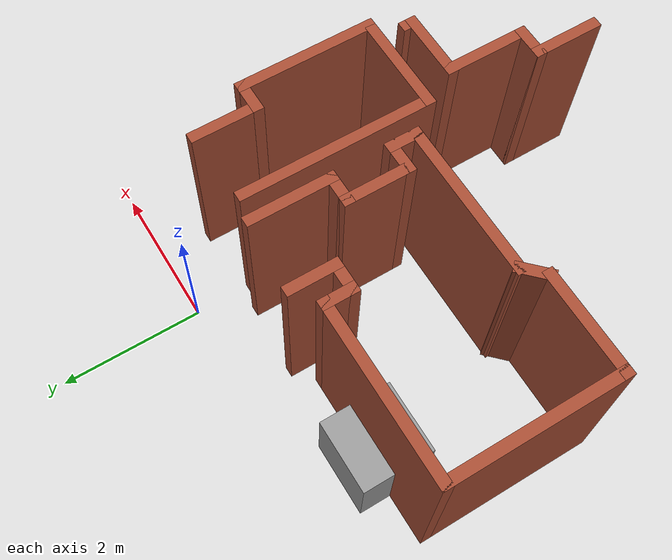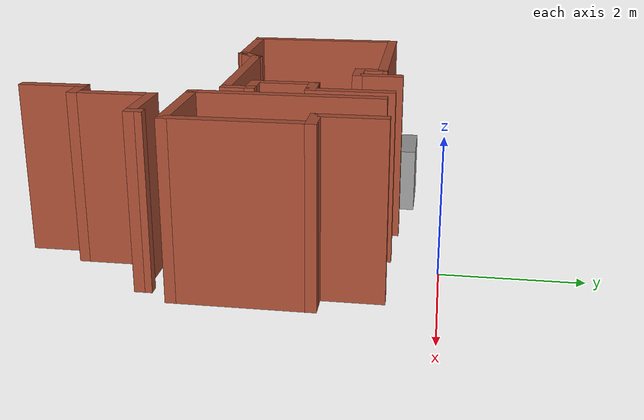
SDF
<sdf version="1.6">
 <model name="map_77">
  <link name="Wall_24">
   <pose>-1.37673 -0.999591 0 0 0 -1.5708</pose>
   <visual name="Wall_24_Visual">
    <pose>0 0 1.25 0 -0 0</pose>
    <geometry><box><size>0.75 0.15 2.5</size></box></geometry>
    <material>
     <script><uri>file://media/materials/scripts/gazebo.material</uri><name>Gazebo/Bricks</name></script>
     <ambient>1 1 1 1</ambient>
     <shader type="pixel"/>
    </material>
    <meta><layer>0</layer></meta>
   </visual>
   <collision name="Wall_24_Collision">
    <pose>0 0 1.25 0 -0 0</pose>
    <geometry><box><size>0.75 0.15 2.5</size></box></geometry>
    <surface>
     <friction>
      <ode><mu>1</mu><mu2>1</mu2><fdir1>0 0 0</fdir1><slip1>0</slip1><slip2>0</slip2></ode>
      <torsional>
       <coefficient>1</coefficient>
       <patch_radius>0</patch_radius>
       <surface_radius>0</surface_radius>
       <use_patch_radius>1</use_patch_radius>
       <ode><slip>0</slip></ode>
      </torsional>
     </friction>
     <bounce><restitution_coefficient>0</restitution_coefficient><threshold>1e+06</threshold></bounce>
     <contact>
      <collide_without_contact>0</collide_without_contact>
      <collide_without_contact_bitmask>1</collide_without_contact_bitmask>
      <collide_bitmask>1</collide_bitmask>
      <ode>
       <soft_cfm>0</soft_cfm>
       <soft_erp>0.2</soft_erp>
       <kp>1e+13</kp>
       <kd>1</kd>
       <max_vel>0.01</max_vel>
       <min_depth>0</min_depth>
      </ode>
      <bullet>
       <split_impulse>1</split_impulse>
       <split_impulse_penetration_threshold>-0.01</split_impulse_penetration_threshold>
       <soft_cfm>0</soft_cfm>
       <soft_erp>0.2</soft_erp>
       <kp>1e+13</kp>
       <kd>1</kd>
      </bullet>
     </contact>
    </surface>
   </collision>
  </link>
  <link name="Wall_25">
   <pose>-1.55173 -1.29959 0 0 -0 3.14159</pose>
   <visual name="Wall_25_Visual">
    <pose>0 0 1.25 0 -0 0</pose>
    <geometry><box><size>0.5 0.15 2.5</size></box></geometry>
    <material>
     <script><uri>file://media/materials/scripts/gazebo.material</uri><name>Gazebo/Bricks</name></script>
     <ambient>1 1 1 1</ambient>
     <shader type="pixel"/>
    </material>
    <meta><layer>0</layer></meta>
   </visual>
   <collision name="Wall_25_Collision">
    <pose>0 0 1.25 0 -0 0</pose>
    <geometry><box><size>0.5 0.15 2.5</size></box></geometry>
    <surface>
     <friction>
      <ode><mu>1</mu><mu2>1</mu2><fdir1>0 0 0</fdir1><slip1>0</slip1><slip2>0</slip2></ode>
      <torsional>
       <coefficient>1</coefficient>
       <patch_radius>0</patch_radius>
       <surface_radius>0</surface_radius>
       <use_patch_radius>1</use_patch_radius>
       <ode><slip>0</slip></ode>
      </torsional>
     </friction>
     <bounce><restitution_coefficient>0</restitution_coefficient><threshold>1e+06</threshold></bounce>
     <contact>
      <collide_without_contact>0</collide_without_contact>
      <collide_without_contact_bitmask>1</collide_without_contact_bitmask>
      <collide_bitmask>1</collide_bitmask>
      <ode>
       <soft_cfm>0</soft_cfm>
       <soft_erp>0.2</soft_erp>
       <kp>1e+13</kp>
       <kd>1</kd>
       <max_vel>0.01</max_vel>
       <min_depth>0</min_depth>
      </ode>
      <bullet>
       <split_impulse>1</split_impulse>
       <split_impulse_penetration_threshold>-0.01</split_impulse_penetration_threshold>
       <soft_cfm>0</soft_cfm>
       <soft_erp>0.2</soft_erp>
       <kp>1e+13</kp>
       <kd>1</kd>
      </bullet>
     </contact>
    </surface>
   </collision>
  </link>
  <link name="Wall_26">
   <pose>-1.72673 -1.12459 0 0 -0 1.5708</pose>
   <visual name="Wall_26_Visual">
    <pose>0 0 1.25 0 -0 0</pose>
    <geometry><box><size>0.5 0.15 2.5</size></box></geometry>
    <material>
     <script><uri>file://media/materials/scripts/gazebo.material</uri><name>Gazebo/Bricks</name></script>
     <ambient>1 1 1 1</ambient>
     <shader type="pixel"/>
    </material>
    <meta><layer>0</layer></meta>
   </visual>
   <collision name="Wall_26_Collision">
    <pose>0 0 1.25 0 -0 0</pose>
    <geometry><box><size>0.5 0.15 2.5</size></box></geometry>
    <surface>
     <friction>
      <ode><mu>1</mu><mu2>1</mu2><fdir1>0 0 0</fdir1><slip1>0</slip1><slip2>0</slip2></ode>
      <torsional>
       <coefficient>1</coefficient>
       <patch_radius>0</patch_radius>
       <surface_radius>0</surface_radius>
       <use_patch_radius>1</use_patch_radius>
       <ode><slip>0</slip></ode>
      </torsional>
     </friction>
     <bounce><restitution_coefficient>0</restitution_coefficient><threshold>1e+06</threshold></bounce>
     <contact>
      <collide_without_contact>0</collide_without_contact>
      <collide_without_contact_bitmask>1</collide_without_contact_bitmask>
      <collide_bitmask>1</collide_bitmask>
      <ode>
       <soft_cfm>0</soft_cfm>
       <soft_erp>0.2</soft_erp>
       <kp>1e+13</kp>
       <kd>1</kd>
       <max_vel>0.01</max_vel>
       <min_depth>0</min_depth>
      </ode>
      <bullet>
       <split_impulse>1</split_impulse>
       <split_impulse_penetration_threshold>-0.01</split_impulse_penetration_threshold>
       <soft_cfm>0</soft_cfm>
       <soft_erp>0.2</soft_erp>
       <kp>1e+13</kp>
       <kd>1</kd>
      </bullet>
     </contact>
    </surface>
   </collision>
  </link>
  <link name="Wall_27">
   <pose>-2.90173 -0.949591 0 0 -0 3.14159</pose>
   <visual name="Wall_27_Visual">
    <pose>0 0 1.25 0 -0 0</pose>
    <geometry><box><size>2.5 0.15 2.5</size></box></geometry>
    <material>
     <script><uri>file://media/materials/scripts/gazebo.material</uri><name>Gazebo/Bricks</name></script>
     <ambient>1 1 1 1</ambient>
     <shader type="pixel"/>
    </material>
    <meta><layer>0</layer></meta>
   </visual>
   <collision name="Wall_27_Collision">
    <pose>0 0 1.25 0 -0 0</pose>
    <geometry><box><size>2.5 0.15 2.5</size></box></geometry>
    <surface>
     <friction>
      <ode><mu>1</mu><mu2>1</mu2><fdir1>0 0 0</fdir1><slip1>0</slip1><slip2>0</slip2></ode>
      <torsional>
       <coefficient>1</coefficient>
       <patch_radius>0</patch_radius>
       <surface_radius>0</surface_radius>
       <use_patch_radius>1</use_patch_radius>
       <ode><slip>0</slip></ode>
      </torsional>
     </friction>
     <bounce><restitution_coefficient>0</restitution_coefficient><threshold>1e+06</threshold></bounce>
     <contact>
      <collide_without_contact>0</collide_without_contact>
      <collide_without_contact_bitmask>1</collide_without_contact_bitmask>
      <collide_bitmask>1</collide_bitmask>
      <ode>
       <soft_cfm>0</soft_cfm>
       <soft_erp>0.2</soft_erp>
       <kp>1e+13</kp>
       <kd>1</kd>
       <max_vel>0.01</max_vel>
       <min_depth>0</min_depth>
      </ode>
      <bullet>
       <split_impulse>1</split_impulse>
       <split_impulse_penetration_threshold>-0.01</split_impulse_penetration_threshold>
       <soft_cfm>0</soft_cfm>
       <soft_erp>0.2</soft_erp>
       <kp>1e+13</kp>
       <kd>1</kd>
      </bullet>
     </contact>
    </surface>
   </collision>
  </link>
  <link name="Wall_28">
   <pose>-4.07673 -2.12459 0 0 0 -1.5708</pose>
   <visual name="Wall_28_Visual">
    <pose>0 0 1.25 0 -0 0</pose>
    <geometry><box><size>2.5 0.15 2.5</size></box></geometry>
    <material>
     <script><uri>file://media/materials/scripts/gazebo.material</uri><name>Gazebo/Bricks</name></script>
     <ambient>1 1 1 1</ambient>
     <shader type="pixel"/>
    </material>
    <meta><layer>0</layer></meta>
   </visual>
   <collision name="Wall_28_Collision">
    <pose>0 0 1.25 0 -0 0</pose>
    <geometry><box><size>2.5 0.15 2.5</size></box></geometry>
    <surface>
     <friction>
      <ode><mu>1</mu><mu2>1</mu2><fdir1>0 0 0</fdir1><slip1>0</slip1><slip2>0</slip2></ode>
      <torsional>
       <coefficient>1</coefficient>
       <patch_radius>0</patch_radius>
       <surface_radius>0</surface_radius>
       <use_patch_radius>1</use_patch_radius>
       <ode><slip>0</slip></ode>
      </torsional>
     </friction>
     <bounce><restitution_coefficient>0</restitution_coefficient><threshold>1e+06</threshold></bounce>
     <contact>
      <collide_without_contact>0</collide_without_contact>
      <collide_without_contact_bitmask>1</collide_without_contact_bitmask>
      <collide_bitmask>1</collide_bitmask>
      <ode>
       <soft_cfm>0</soft_cfm>
       <soft_erp>0.2</soft_erp>
       <kp>1e+13</kp>
       <kd>1</kd>
       <max_vel>0.01</max_vel>
       <min_depth>0</min_depth>
      </ode>
      <bullet>
       <split_impulse>1</split_impulse>
       <split_impulse_penetration_threshold>-0.01</split_impulse_penetration_threshold>
       <soft_cfm>0</soft_cfm>
       <soft_erp>0.2</soft_erp>
       <kp>1e+13</kp>
       <kd>1</kd>
      </bullet>
     </contact>
    </surface>
   </collision>
  </link>
  <link name="Wall_29">
   <pose>-3.40173 -3.29959 0 0 -0 0</pose>
   <visual name="Wall_29_Visual">
    <pose>0 0 1.25 0 -0 0</pose>
    <geometry><box><size>1.5 0.15 2.5</size></box></geometry>
    <material>
     <script><uri>file://media/materials/scripts/gazebo.material</uri><name>Gazebo/Bricks</name></script>
     <ambient>1 1 1 1</ambient>
     <shader type="pixel"/>
    </material>
    <meta><layer>0</layer></meta>
   </visual>
   <collision name="Wall_29_Collision">
    <pose>0 0 1.25 0 -0 0</pose>
    <geometry><box><size>1.5 0.15 2.5</size></box></geometry>
    <surface>
     <friction>
      <ode><mu>1</mu><mu2>1</mu2><fdir1>0 0 0</fdir1><slip1>0</slip1><slip2>0</slip2></ode>
      <torsional>
       <coefficient>1</coefficient>
       <patch_radius>0</patch_radius>
       <surface_radius>0</surface_radius>
       <use_patch_radius>1</use_patch_radius>
       <ode><slip>0</slip></ode>
      </torsional>
     </friction>
     <bounce><restitution_coefficient>0</restitution_coefficient><threshold>1e+06</threshold></bounce>
     <contact>
      <collide_without_contact>0</collide_without_contact>
      <collide_without_contact_bitmask>1</collide_without_contact_bitmask>
      <collide_bitmask>1</collide_bitmask>
      <ode>
       <soft_cfm>0</soft_cfm>
       <soft_erp>0.2</soft_erp>
       <kp>1e+13</kp>
       <kd>1</kd>
       <max_vel>0.01</max_vel>
       <min_depth>0</min_depth>
      </ode>
      <bullet>
       <split_impulse>1</split_impulse>
       <split_impulse_penetration_threshold>-0.01</split_impulse_penetration_threshold>
       <soft_cfm>0</soft_cfm>
       <soft_erp>0.2</soft_erp>
       <kp>1e+13</kp>
       <kd>1</kd>
      </bullet>
     </contact>
    </surface>
   </collision>
  </link>
  <link name="Wall_30">
   <pose>-2.60298 -3.17585 0 0 -0 0.785398</pose>
   <visual name="Wall_30_Visual">
    <pose>0 0 1.25 0 -0 0</pose>
    <geometry><box><size>0.5 0.15 2.5</size></box></geometry>
    <material>
     <script><uri>file://media/materials/scripts/gazebo.material</uri><name>Gazebo/Bricks</name></script>
     <ambient>1 1 1 1</ambient>
     <shader type="pixel"/>
    </material>
    <meta><layer>0</layer></meta>
   </visual>
   <collision name="Wall_30_Collision">
    <pose>0 0 1.25 0 -0 0</pose>
    <geometry><box><size>0.5 0.15 2.5</size></box></geometry>
    <surface>
     <friction>
      <ode><mu>1</mu><mu2>1</mu2><fdir1>0 0 0</fdir1><slip1>0</slip1><slip2>0</slip2></ode>
      <torsional>
       <coefficient>1</coefficient>
       <patch_radius>0</patch_radius>
       <surface_radius>0</surface_radius>
       <use_patch_radius>1</use_patch_radius>
       <ode><slip>0</slip></ode>
      </torsional>
     </friction>
     <bounce><restitution_coefficient>0</restitution_coefficient><threshold>1e+06</threshold></bounce>
     <contact>
      <collide_without_contact>0</collide_without_contact>
      <collide_without_contact_bitmask>1</collide_without_contact_bitmask>
      <collide_bitmask>1</collide_bitmask>
      <ode>
       <soft_cfm>0</soft_cfm>
       <soft_erp>0.2</soft_erp>
       <kp>1e+13</kp>
       <kd>1</kd>
       <max_vel>0.01</max_vel>
       <min_depth>0</min_depth>
      </ode>
      <bullet>
       <split_impulse>1</split_impulse>
       <split_impulse_penetration_threshold>-0.01</split_impulse_penetration_threshold>
       <soft_cfm>0</soft_cfm>
       <soft_erp>0.2</soft_erp>
       <kp>1e+13</kp>
       <kd>1</kd>
      </bullet>
     </contact>
    </surface>
   </collision>
  </link>
  <link name="Wall_31">
   <pose>-1.42924 -3.0521 0 0 -0 0</pose>
   <visual name="Wall_31_Visual">
    <pose>0 0 1.25 0 -0 0</pose>
    <geometry><box><size>2.25 0.15 2.5</size></box></geometry>
    <material>
     <script><uri>file://media/materials/scripts/gazebo.material</uri><name>Gazebo/Bricks</name></script>
     <ambient>1 1 1 1</ambient>
     <shader type="pixel"/>
    </material>
    <meta><layer>0</layer></meta>
   </visual>
   <collision name="Wall_31_Collision">
    <pose>0 0 1.25 0 -0 0</pose>
    <geometry><box><size>2.25 0.15 2.5</size></box></geometry>
    <surface>
     <friction>
      <ode><mu>1</mu><mu2>1</mu2><fdir1>0 0 0</fdir1><slip1>0</slip1><slip2>0</slip2></ode>
      <torsional>
       <coefficient>1</coefficient>
       <patch_radius>0</patch_radius>
       <surface_radius>0</surface_radius>
       <use_patch_radius>1</use_patch_radius>
       <ode><slip>0</slip></ode>
      </torsional>
     </friction>
     <bounce><restitution_coefficient>0</restitution_coefficient><threshold>1e+06</threshold></bounce>
     <contact>
      <collide_without_contact>0</collide_without_contact>
      <collide_without_contact_bitmask>1</collide_without_contact_bitmask>
      <collide_bitmask>1</collide_bitmask>
      <ode>
       <soft_cfm>0</soft_cfm>
       <soft_erp>0.2</soft_erp>
       <kp>1e+13</kp>
       <kd>1</kd>
       <max_vel>0.01</max_vel>
       <min_depth>0</min_depth>
      </ode>
      <bullet>
       <split_impulse>1</split_impulse>
       <split_impulse_penetration_threshold>-0.01</split_impulse_penetration_threshold>
       <soft_cfm>0</soft_cfm>
       <soft_erp>0.2</soft_erp>
       <kp>1e+13</kp>
       <kd>1</kd>
      </bullet>
     </contact>
    </surface>
   </collision>
  </link>
  <link name="Wall_32">
   <pose>-0.37924 -2.8771 0 0 -0 1.5708</pose>
   <visual name="Wall_32_Visual">
    <pose>0 0 1.25 0 -0 0</pose>
    <geometry><box><size>0.5 0.15 2.5</size></box></geometry>
    <material>
     <script><uri>file://media/materials/scripts/gazebo.material</uri><name>Gazebo/Bricks</name></script>
     <ambient>1 1 1 1</ambient>
     <shader type="pixel"/>
    </material>
    <meta><layer>0</layer></meta>
   </visual>
   <collision name="Wall_32_Collision">
    <pose>0 0 1.25 0 -0 0</pose>
    <geometry><box><size>0.5 0.15 2.5</size></box></geometry>
    <surface>
     <friction>
      <ode><mu>1</mu><mu2>1</mu2><fdir1>0 0 0</fdir1><slip1>0</slip1><slip2>0</slip2></ode>
      <torsional>
       <coefficient>1</coefficient>
       <patch_radius>0</patch_radius>
       <surface_radius>0</surface_radius>
       <use_patch_radius>1</use_patch_radius>
       <ode><slip>0</slip></ode>
      </torsional>
     </friction>
     <bounce><restitution_coefficient>0</restitution_coefficient><threshold>1e+06</threshold></bounce>
     <contact>
      <collide_without_contact>0</collide_without_contact>
      <collide_without_contact_bitmask>1</collide_without_contact_bitmask>
      <collide_bitmask>1</collide_bitmask>
      <ode>
       <soft_cfm>0</soft_cfm>
       <soft_erp>0.2</soft_erp>
       <kp>1e+13</kp>
       <kd>1</kd>
       <max_vel>0.01</max_vel>
       <min_depth>0</min_depth>
      </ode>
      <bullet>
       <split_impulse>1</split_impulse>
       <split_impulse_penetration_threshold>-0.01</split_impulse_penetration_threshold>
       <soft_cfm>0</soft_cfm>
       <soft_erp>0.2</soft_erp>
       <kp>1e+13</kp>
       <kd>1</kd>
      </bullet>
     </contact>
    </surface>
   </collision>
  </link>
  <link name="Wall_33">
   <pose>-0.55424 -2.7021 0 0 -0 3.14159</pose>
   <visual name="Wall_33_Visual">
    <pose>0 0 1.25 0 -0 0</pose>
    <geometry><box><size>0.5 0.15 2.5</size></box></geometry>
    <material>
     <script><uri>file://media/materials/scripts/gazebo.material</uri><name>Gazebo/Bricks</name></script>
     <ambient>1 1 1 1</ambient>
     <shader type="pixel"/>
    </material>
    <meta><layer>0</layer></meta>
   </visual>
   <collision name="Wall_33_Collision">
    <pose>0 0 1.25 0 -0 0</pose>
    <geometry><box><size>0.5 0.15 2.5</size></box></geometry>
    <surface>
     <friction>
      <ode><mu>1</mu><mu2>1</mu2><fdir1>0 0 0</fdir1><slip1>0</slip1><slip2>0</slip2></ode>
      <torsional>
       <coefficient>1</coefficient>
       <patch_radius>0</patch_radius>
       <surface_radius>0</surface_radius>
       <use_patch_radius>1</use_patch_radius>
       <ode><slip>0</slip></ode>
      </torsional>
     </friction>
     <bounce><restitution_coefficient>0</restitution_coefficient><threshold>1e+06</threshold></bounce>
     <contact>
      <collide_without_contact>0</collide_without_contact>
      <collide_without_contact_bitmask>1</collide_without_contact_bitmask>
      <collide_bitmask>1</collide_bitmask>
      <ode>
       <soft_cfm>0</soft_cfm>
       <soft_erp>0.2</soft_erp>
       <kp>1e+13</kp>
       <kd>1</kd>
       <max_vel>0.01</max_vel>
       <min_depth>0</min_depth>
      </ode>
      <bullet>
       <split_impulse>1</split_impulse>
       <split_impulse_penetration_threshold>-0.01</split_impulse_penetration_threshold>
       <soft_cfm>0</soft_cfm>
       <soft_erp>0.2</soft_erp>
       <kp>1e+13</kp>
       <kd>1</kd>
      </bullet>
     </contact>
    </surface>
   </collision>
  </link>
  <link name="Wall_34">
   <pose>-0.72924 -2.2771 0 0 -0 1.5708</pose>
   <visual name="Wall_34_Visual">
    <pose>0 0 1.25 0 -0 0</pose>
    <geometry><box><size>1 0.15 2.5</size></box></geometry>
    <material>
     <script><uri>file://media/materials/scripts/gazebo.material</uri><name>Gazebo/Bricks</name></script>
     <ambient>1 1 1 1</ambient>
     <shader type="pixel"/>
    </material>
    <meta><layer>0</layer></meta>
   </visual>
   <collision name="Wall_34_Collision">
    <pose>0 0 1.25 0 -0 0</pose>
    <geometry><box><size>1 0.15 2.5</size></box></geometry>
    <surface>
     <friction>
      <ode><mu>1</mu><mu2>1</mu2><fdir1>0 0 0</fdir1><slip1>0</slip1><slip2>0</slip2></ode>
      <torsional>
       <coefficient>1</coefficient>
       <patch_radius>0</patch_radius>
       <surface_radius>0</surface_radius>
       <use_patch_radius>1</use_patch_radius>
       <ode><slip>0</slip></ode>
      </torsional>
     </friction>
     <bounce><restitution_coefficient>0</restitution_coefficient><threshold>1e+06</threshold></bounce>
     <contact>
      <collide_without_contact>0</collide_without_contact>
      <collide_without_contact_bitmask>1</collide_without_contact_bitmask>
      <collide_bitmask>1</collide_bitmask>
      <ode>
       <soft_cfm>0</soft_cfm>
       <soft_erp>0.2</soft_erp>
       <kp>1e+13</kp>
       <kd>1</kd>
       <max_vel>0.01</max_vel>
       <min_depth>0</min_depth>
      </ode>
      <bullet>
       <split_impulse>1</split_impulse>
       <split_impulse_penetration_threshold>-0.01</split_impulse_penetration_threshold>
       <soft_cfm>0</soft_cfm>
       <soft_erp>0.2</soft_erp>
       <kp>1e+13</kp>
       <kd>1</kd>
      </bullet>
     </contact>
    </surface>
   </collision>
  </link>
  <link name="Wall_37">
   <pose>-0.55424 -1.8521 0 0 -0 0</pose>
   <visual name="Wall_37_Visual">
    <pose>0 0 1.25 0 -0 0</pose>
    <geometry><box><size>0.5 0.15 2.5</size></box></geometry>
    <material>
     <script><uri>file://media/materials/scripts/gazebo.material</uri><name>Gazebo/Bricks</name></script>
     <ambient>1 1 1 1</ambient>
     <shader type="pixel"/>
    </material>
    <meta><layer>0</layer></meta>
   </visual>
   <collision name="Wall_37_Collision">
    <pose>0 0 1.25 0 -0 0</pose>
    <geometry><box><size>0.5 0.15 2.5</size></box></geometry>
    <surface>
     <friction>
      <ode><mu>1</mu><mu2>1</mu2><fdir1>0 0 0</fdir1><slip1>0</slip1><slip2>0</slip2></ode>
      <torsional>
       <coefficient>1</coefficient>
       <patch_radius>0</patch_radius>
       <surface_radius>0</surface_radius>
       <use_patch_radius>1</use_patch_radius>
       <ode><slip>0</slip></ode>
      </torsional>
     </friction>
     <bounce><restitution_coefficient>0</restitution_coefficient><threshold>1e+06</threshold></bounce>
     <contact>
      <collide_without_contact>0</collide_without_contact>
      <collide_without_contact_bitmask>1</collide_without_contact_bitmask>
      <collide_bitmask>1</collide_bitmask>
      <ode>
       <soft_cfm>0</soft_cfm>
       <soft_erp>0.2</soft_erp>
       <kp>1e+13</kp>
       <kd>1</kd>
       <max_vel>0.01</max_vel>
       <min_depth>0</min_depth>
      </ode>
      <bullet>
       <split_impulse>1</split_impulse>
       <split_impulse_penetration_threshold>-0.01</split_impulse_penetration_threshold>
       <soft_cfm>0</soft_cfm>
       <soft_erp>0.2</soft_erp>
       <kp>1e+13</kp>
       <kd>1</kd>
      </bullet>
     </contact>
    </surface>
   </collision>
  </link>
  <link name="Wall_40">
   <pose>-0.37924 -1.3021 0 0 -0 1.5708</pose>
   <visual name="Wall_40_Visual">
    <pose>0 0 1.25 0 -0 0</pose>
    <geometry><box><size>1.25 0.15 2.5</size></box></geometry>
    <material>
     <script><uri>file://media/materials/scripts/gazebo.material</uri><name>Gazebo/Bricks</name></script>
     <ambient>1 1 1 1</ambient>
     <shader type="pixel"/>
    </material>
    <meta><layer>0</layer></meta>
   </visual>
   <collision name="Wall_40_Collision">
    <pose>0 0 1.25 0 -0 0</pose>
    <geometry><box><size>1.25 0.15 2.5</size></box></geometry>
    <surface>
     <friction>
      <ode><mu>1</mu><mu2>1</mu2><fdir1>0 0 0</fdir1><slip1>0</slip1><slip2>0</slip2></ode>
      <torsional>
       <coefficient>1</coefficient>
       <patch_radius>0</patch_radius>
       <surface_radius>0</surface_radius>
       <use_patch_radius>1</use_patch_radius>
       <ode><slip>0</slip></ode>
      </torsional>
     </friction>
     <bounce><restitution_coefficient>0</restitution_coefficient><threshold>1e+06</threshold></bounce>
     <contact>
      <collide_without_contact>0</collide_without_contact>
      <collide_without_contact_bitmask>1</collide_without_contact_bitmask>
      <collide_bitmask>1</collide_bitmask>
      <ode>
       <soft_cfm>0</soft_cfm>
       <soft_erp>0.2</soft_erp>
       <kp>1e+13</kp>
       <kd>1</kd>
       <max_vel>0.01</max_vel>
       <min_depth>0</min_depth>
      </ode>
      <bullet>
       <split_impulse>1</split_impulse>
       <split_impulse_penetration_threshold>-0.01</split_impulse_penetration_threshold>
       <soft_cfm>0</soft_cfm>
       <soft_erp>0.2</soft_erp>
       <kp>1e+13</kp>
       <kd>1</kd>
      </bullet>
     </contact>
    </surface>
   </collision>
  </link>
  <link name="Wall_42">
   <pose>-0.041166 -2.14269 0 0 0 -1.5708</pose>
   <visual name="Wall_42_Visual">
    <pose>0 0 1.25 0 -0 0</pose>
    <geometry><box><size>2.75 0.15 2.5</size></box></geometry>
    <material>
     <script><uri>file://media/materials/scripts/gazebo.material</uri><name>Gazebo/Bricks</name></script>
     <ambient>1 1 1 1</ambient>
     <shader type="pixel"/>
    </material>
    <meta><layer>0</layer></meta>
   </visual>
   <collision name="Wall_42_Collision">
    <pose>0 0 1.25 0 -0 0</pose>
    <geometry><box><size>2.75 0.15 2.5</size></box></geometry>
    <surface>
     <friction>
      <ode><mu>1</mu><mu2>1</mu2><fdir1>0 0 0</fdir1><slip1>0</slip1><slip2>0</slip2></ode>
      <torsional>
       <coefficient>1</coefficient>
       <patch_radius>0</patch_radius>
       <surface_radius>0</surface_radius>
       <use_patch_radius>1</use_patch_radius>
       <ode><slip>0</slip></ode>
      </torsional>
     </friction>
     <bounce><restitution_coefficient>0</restitution_coefficient><threshold>1e+06</threshold></bounce>
     <contact>
      <collide_without_contact>0</collide_without_contact>
      <collide_without_contact_bitmask>1</collide_without_contact_bitmask>
      <collide_bitmask>1</collide_bitmask>
      <ode>
       <soft_cfm>0</soft_cfm>
       <soft_erp>0.2</soft_erp>
       <kp>1e+13</kp>
       <kd>1</kd>
       <max_vel>0.01</max_vel>
       <min_depth>0</min_depth>
      </ode>
      <bullet>
       <split_impulse>1</split_impulse>
       <split_impulse_penetration_threshold>-0.01</split_impulse_penetration_threshold>
       <soft_cfm>0</soft_cfm>
       <soft_erp>0.2</soft_erp>
       <kp>1e+13</kp>
       <kd>1</kd>
      </bullet>
     </contact>
    </surface>
   </collision>
  </link>
  <link name="Wall_45">
   <pose>0.633834 -3.44269 0 0 -0 0</pose>
   <visual name="Wall_45_Visual">
    <pose>0 0 1.25 0 -0 0</pose>
    <geometry><box><size>1.5 0.15 2.5</size></box></geometry>
    <material>
     <script><uri>file://media/materials/scripts/gazebo.material</uri><name>Gazebo/Bricks</name></script>
     <ambient>1 1 1 1</ambient>
     <shader type="pixel"/>
    </material>
    <meta><layer>0</layer></meta>
   </visual>
   <collision name="Wall_45_Collision">
    <pose>0 0 1.25 0 -0 0</pose>
    <geometry><box><size>1.5 0.15 2.5</size></box></geometry>
    <surface>
     <friction>
      <ode><mu>1</mu><mu2>1</mu2><fdir1>0 0 0</fdir1><slip1>0</slip1><slip2>0</slip2></ode>
      <torsional>
       <coefficient>1</coefficient>
       <patch_radius>0</patch_radius>
       <surface_radius>0</surface_radius>
       <use_patch_radius>1</use_patch_radius>
       <ode><slip>0</slip></ode>
      </torsional>
     </friction>
     <bounce><restitution_coefficient>0</restitution_coefficient><threshold>1e+06</threshold></bounce>
     <contact>
      <collide_without_contact>0</collide_without_contact>
      <collide_without_contact_bitmask>1</collide_without_contact_bitmask>
      <collide_bitmask>1</collide_bitmask>
      <ode>
       <soft_cfm>0</soft_cfm>
       <soft_erp>0.2</soft_erp>
       <kp>1e+13</kp>
       <kd>1</kd>
       <max_vel>0.01</max_vel>
       <min_depth>0</min_depth>
      </ode>
      <bullet>
       <split_impulse>1</split_impulse>
       <split_impulse_penetration_threshold>-0.01</split_impulse_penetration_threshold>
       <soft_cfm>0</soft_cfm>
       <soft_erp>0.2</soft_erp>
       <kp>1e+13</kp>
       <kd>1</kd>
      </bullet>
     </contact>
    </surface>
   </collision>
  </link>
  <link name="Wall_46">
   <pose>1.30883 -2.51769 0 0 -0 1.5708</pose>
   <visual name="Wall_46_Visual">
    <pose>0 0 1.25 0 -0 0</pose>
    <geometry><box><size>2 0.15 2.5</size></box></geometry>
    <material>
     <script><uri>file://media/materials/scripts/gazebo.material</uri><name>Gazebo/Bricks</name></script>
     <ambient>1 1 1 1</ambient>
     <shader type="pixel"/>
    </material>
    <meta><layer>0</layer></meta>
   </visual>
   <collision name="Wall_46_Collision">
    <pose>0 0 1.25 0 -0 0</pose>
    <geometry><box><size>2 0.15 2.5</size></box></geometry>
    <surface>
     <friction>
      <ode><mu>1</mu><mu2>1</mu2><fdir1>0 0 0</fdir1><slip1>0</slip1><slip2>0</slip2></ode>
      <torsional>
       <coefficient>1</coefficient>
       <patch_radius>0</patch_radius>
       <surface_radius>0</surface_radius>
       <use_patch_radius>1</use_patch_radius>
       <ode><slip>0</slip></ode>
      </torsional>
     </friction>
     <bounce><restitution_coefficient>0</restitution_coefficient><threshold>1e+06</threshold></bounce>
     <contact>
      <collide_without_contact>0</collide_without_contact>
      <collide_without_contact_bitmask>1</collide_without_contact_bitmask>
      <collide_bitmask>1</collide_bitmask>
      <ode>
       <soft_cfm>0</soft_cfm>
       <soft_erp>0.2</soft_erp>
       <kp>1e+13</kp>
       <kd>1</kd>
       <max_vel>0.01</max_vel>
       <min_depth>0</min_depth>
      </ode>
      <bullet>
       <split_impulse>1</split_impulse>
       <split_impulse_penetration_threshold>-0.01</split_impulse_penetration_threshold>
       <soft_cfm>0</soft_cfm>
       <soft_erp>0.2</soft_erp>
       <kp>1e+13</kp>
       <kd>1</kd>
      </bullet>
     </contact>
    </surface>
   </collision>
  </link>
  <link name="Wall_47">
   <pose>1.13383 -1.59269 0 0 -0 3.14159</pose>
   <visual name="Wall_47_Visual">
    <pose>0 0 1.25 0 -0 0</pose>
    <geometry><box><size>0.5 0.15 2.5</size></box></geometry>
    <material>
     <script><uri>file://media/materials/scripts/gazebo.material</uri><name>Gazebo/Bricks</name></script>
     <ambient>1 1 1 1</ambient>
     <shader type="pixel"/>
    </material>
    <meta><layer>0</layer></meta>
   </visual>
   <collision name="Wall_47_Collision">
    <pose>0 0 1.25 0 -0 0</pose>
    <geometry><box><size>0.5 0.15 2.5</size></box></geometry>
    <surface>
     <friction>
      <ode><mu>1</mu><mu2>1</mu2><fdir1>0 0 0</fdir1><slip1>0</slip1><slip2>0</slip2></ode>
      <torsional>
       <coefficient>1</coefficient>
       <patch_radius>0</patch_radius>
       <surface_radius>0</surface_radius>
       <use_patch_radius>1</use_patch_radius>
       <ode><slip>0</slip></ode>
      </torsional>
     </friction>
     <bounce><restitution_coefficient>0</restitution_coefficient><threshold>1e+06</threshold></bounce>
     <contact>
      <collide_without_contact>0</collide_without_contact>
      <collide_without_contact_bitmask>1</collide_without_contact_bitmask>
      <collide_bitmask>1</collide_bitmask>
      <ode>
       <soft_cfm>0</soft_cfm>
       <soft_erp>0.2</soft_erp>
       <kp>1e+13</kp>
       <kd>1</kd>
       <max_vel>0.01</max_vel>
       <min_depth>0</min_depth>
      </ode>
      <bullet>
       <split_impulse>1</split_impulse>
       <split_impulse_penetration_threshold>-0.01</split_impulse_penetration_threshold>
       <soft_cfm>0</soft_cfm>
       <soft_erp>0.2</soft_erp>
       <kp>1e+13</kp>
       <kd>1</kd>
      </bullet>
     </contact>
    </surface>
   </collision>
  </link>
  <link name="Wall_48">
   <pose>0.958834 -1.16769 0 0 -0 1.5708</pose>
   <visual name="Wall_48_Visual">
    <pose>0 0 1.25 0 -0 0</pose>
    <geometry><box><size>1 0.15 2.5</size></box></geometry>
    <material>
     <script><uri>file://media/materials/scripts/gazebo.material</uri><name>Gazebo/Bricks</name></script>
     <ambient>1 1 1 1</ambient>
     <shader type="pixel"/>
    </material>
    <meta><layer>0</layer></meta>
   </visual>
   <collision name="Wall_48_Collision">
    <pose>0 0 1.25 0 -0 0</pose>
    <geometry><box><size>1 0.15 2.5</size></box></geometry>
    <surface>
     <friction>
      <ode><mu>1</mu><mu2>1</mu2><fdir1>0 0 0</fdir1><slip1>0</slip1><slip2>0</slip2></ode>
      <torsional>
       <coefficient>1</coefficient>
       <patch_radius>0</patch_radius>
       <surface_radius>0</surface_radius>
       <use_patch_radius>1</use_patch_radius>
       <ode><slip>0</slip></ode>
      </torsional>
     </friction>
     <bounce><restitution_coefficient>0</restitution_coefficient><threshold>1e+06</threshold></bounce>
     <contact>
      <collide_without_contact>0</collide_without_contact>
      <collide_without_contact_bitmask>1</collide_without_contact_bitmask>
      <collide_bitmask>1</collide_bitmask>
      <ode>
       <soft_cfm>0</soft_cfm>
       <soft_erp>0.2</soft_erp>
       <kp>1e+13</kp>
       <kd>1</kd>
       <max_vel>0.01</max_vel>
       <min_depth>0</min_depth>
      </ode>
      <bullet>
       <split_impulse>1</split_impulse>
       <split_impulse_penetration_threshold>-0.01</split_impulse_penetration_threshold>
       <soft_cfm>0</soft_cfm>
       <soft_erp>0.2</soft_erp>
       <kp>1e+13</kp>
       <kd>1</kd>
      </bullet>
     </contact>
    </surface>
   </collision>
  </link>
  <link name="Wall_54">
   <pose>1.05883 -3.89269 0 0 -0 1.5708</pose>
   <visual name="Wall_54_Visual">
    <pose>0 0 1.25 0 -0 0</pose>
    <geometry><box><size>0.25 0.15 2.5</size></box></geometry>
    <material>
     <script><uri>file://media/materials/scripts/gazebo.material</uri><name>Gazebo/Bricks</name></script>
     <ambient>1 1 1 1</ambient>
     <shader type="pixel"/>
    </material>
    <meta><layer>0</layer></meta>
   </visual>
   <collision name="Wall_54_Collision">
    <pose>0 0 1.25 0 -0 0</pose>
    <geometry><box><size>0.25 0.15 2.5</size></box></geometry>
    <surface>
     <friction>
      <ode><mu>1</mu><mu2>1</mu2><fdir1>0 0 0</fdir1><slip1>0</slip1><slip2>0</slip2></ode>
      <torsional>
       <coefficient>1</coefficient>
       <patch_radius>0</patch_radius>
       <surface_radius>0</surface_radius>
       <use_patch_radius>1</use_patch_radius>
       <ode><slip>0</slip></ode>
      </torsional>
     </friction>
     <bounce><restitution_coefficient>0</restitution_coefficient><threshold>1e+06</threshold></bounce>
     <contact>
      <collide_without_contact>0</collide_without_contact>
      <collide_without_contact_bitmask>1</collide_without_contact_bitmask>
      <collide_bitmask>1</collide_bitmask>
      <ode>
       <soft_cfm>0</soft_cfm>
       <soft_erp>0.2</soft_erp>
       <kp>1e+13</kp>
       <kd>1</kd>
       <max_vel>0.01</max_vel>
       <min_depth>0</min_depth>
      </ode>
      <bullet>
       <split_impulse>1</split_impulse>
       <split_impulse_penetration_threshold>-0.01</split_impulse_penetration_threshold>
       <soft_cfm>0</soft_cfm>
       <soft_erp>0.2</soft_erp>
       <kp>1e+13</kp>
       <kd>1</kd>
      </bullet>
     </contact>
    </surface>
   </collision>
  </link>
  <link name="Wall_57">
   <pose>0.633834 -3.94269 0 0 -0 3.14159</pose>
   <visual name="Wall_57_Visual">
    <pose>0 0 1.25 0 -0 0</pose>
    <geometry><box><size>1 0.15 2.5</size></box></geometry>
    <material>
     <script><uri>file://media/materials/scripts/gazebo.material</uri><name>Gazebo/Bricks</name></script>
     <ambient>1 1 1 1</ambient>
     <shader type="pixel"/>
    </material>
    <meta><layer>0</layer></meta>
   </visual>
   <collision name="Wall_57_Collision">
    <pose>0 0 1.25 0 -0 0</pose>
    <geometry><box><size>1 0.15 2.5</size></box></geometry>
    <surface>
     <friction>
      <ode><mu>1</mu><mu2>1</mu2><fdir1>0 0 0</fdir1><slip1>0</slip1><slip2>0</slip2></ode>
      <torsional>
       <coefficient>1</coefficient>
       <patch_radius>0</patch_radius>
       <surface_radius>0</surface_radius>
       <use_patch_radius>1</use_patch_radius>
       <ode><slip>0</slip></ode>
      </torsional>
     </friction>
     <bounce><restitution_coefficient>0</restitution_coefficient><threshold>1e+06</threshold></bounce>
     <contact>
      <collide_without_contact>0</collide_without_contact>
      <collide_without_contact_bitmask>1</collide_without_contact_bitmask>
      <collide_bitmask>1</collide_bitmask>
      <ode>
       <soft_cfm>0</soft_cfm>
       <soft_erp>0.2</soft_erp>
       <kp>1e+13</kp>
       <kd>1</kd>
       <max_vel>0.01</max_vel>
       <min_depth>0</min_depth>
      </ode>
      <bullet>
       <split_impulse>1</split_impulse>
       <split_impulse_penetration_threshold>-0.01</split_impulse_penetration_threshold>
       <soft_cfm>0</soft_cfm>
       <soft_erp>0.2</soft_erp>
       <kp>1e+13</kp>
       <kd>1</kd>
      </bullet>
     </contact>
    </surface>
   </collision>
  </link>
  <link name="Wall_58">
   <pose>0.208834 -4.49269 0 0 0 -1.5708</pose>
   <visual name="Wall_58_Visual">
    <pose>0 0 1.25 0 -0 0</pose>
    <geometry><box><size>1.25 0.15 2.5</size></box></geometry>
    <material>
     <script><uri>file://media/materials/scripts/gazebo.material</uri><name>Gazebo/Bricks</name></script>
     <ambient>1 1 1 1</ambient>
     <shader type="pixel"/>
    </material>
    <meta><layer>0</layer></meta>
   </visual>
   <collision name="Wall_58_Collision">
    <pose>0 0 1.25 0 -0 0</pose>
    <geometry><box><size>1.25 0.15 2.5</size></box></geometry>
    <surface>
     <friction>
      <ode><mu>1</mu><mu2>1</mu2><fdir1>0 0 0</fdir1><slip1>0</slip1><slip2>0</slip2></ode>
      <torsional>
       <coefficient>1</coefficient>
       <patch_radius>0</patch_radius>
       <surface_radius>0</surface_radius>
       <use_patch_radius>1</use_patch_radius>
       <ode><slip>0</slip></ode>
      </torsional>
     </friction>
     <bounce><restitution_coefficient>0</restitution_coefficient><threshold>1e+06</threshold></bounce>
     <contact>
      <collide_without_contact>0</collide_without_contact>
      <collide_without_contact_bitmask>1</collide_without_contact_bitmask>
      <collide_bitmask>1</collide_bitmask>
      <ode>
       <soft_cfm>0</soft_cfm>
       <soft_erp>0.2</soft_erp>
       <kp>1e+13</kp>
       <kd>1</kd>
       <max_vel>0.01</max_vel>
       <min_depth>0</min_depth>
      </ode>
      <bullet>
       <split_impulse>1</split_impulse>
       <split_impulse_penetration_threshold>-0.01</split_impulse_penetration_threshold>
       <soft_cfm>0</soft_cfm>
       <soft_erp>0.2</soft_erp>
       <kp>1e+13</kp>
       <kd>1</kd>
      </bullet>
     </contact>
    </surface>
   </collision>
  </link>
  <link name="Wall_59">
   <pose>0.033834 -5.04269 0 0 -0 3.14159</pose>
   <visual name="Wall_59_Visual">
    <pose>0 0 1.25 0 -0 0</pose>
    <geometry><box><size>0.5 0.15 2.5</size></box></geometry>
    <material>
     <script><uri>file://media/materials/scripts/gazebo.material</uri><name>Gazebo/Bricks</name></script>
     <ambient>1 1 1 1</ambient>
     <shader type="pixel"/>
    </material>
    <meta><layer>0</layer></meta>
   </visual>
   <collision name="Wall_59_Collision">
    <pose>0 0 1.25 0 -0 0</pose>
    <geometry><box><size>0.5 0.15 2.5</size></box></geometry>
    <surface>
     <friction>
      <ode><mu>1</mu><mu2>1</mu2><fdir1>0 0 0</fdir1><slip1>0</slip1><slip2>0</slip2></ode>
      <torsional>
       <coefficient>1</coefficient>
       <patch_radius>0</patch_radius>
       <surface_radius>0</surface_radius>
       <use_patch_radius>1</use_patch_radius>
       <ode><slip>0</slip></ode>
      </torsional>
     </friction>
     <bounce><restitution_coefficient>0</restitution_coefficient><threshold>1e+06</threshold></bounce>
     <contact>
      <collide_without_contact>0</collide_without_contact>
      <collide_without_contact_bitmask>1</collide_without_contact_bitmask>
      <collide_bitmask>1</collide_bitmask>
      <ode>
       <soft_cfm>0</soft_cfm>
       <soft_erp>0.2</soft_erp>
       <kp>1e+13</kp>
       <kd>1</kd>
       <max_vel>0.01</max_vel>
       <min_depth>0</min_depth>
      </ode>
      <bullet>
       <split_impulse>1</split_impulse>
       <split_impulse_penetration_threshold>-0.01</split_impulse_penetration_threshold>
       <soft_cfm>0</soft_cfm>
       <soft_erp>0.2</soft_erp>
       <kp>1e+13</kp>
       <kd>1</kd>
      </bullet>
     </contact>
    </surface>
   </collision>
  </link>
  <link name="Wall_60">
   <pose>-0.141166 -5.46769 0 0 0 -1.5708</pose>
   <visual name="Wall_60_Visual">
    <pose>0 0 1.25 0 -0 0</pose>
    <geometry><box><size>1 0.15 2.5</size></box></geometry>
    <material>
     <script><uri>file://media/materials/scripts/gazebo.material</uri><name>Gazebo/Bricks</name></script>
     <ambient>1 1 1 1</ambient>
     <shader type="pixel"/>
    </material>
    <meta><layer>0</layer></meta>
   </visual>
   <collision name="Wall_60_Collision">
    <pose>0 0 1.25 0 -0 0</pose>
    <geometry><box><size>1 0.15 2.5</size></box></geometry>
    <surface>
     <friction>
      <ode><mu>1</mu><mu2>1</mu2><fdir1>0 0 0</fdir1><slip1>0</slip1><slip2>0</slip2></ode>
      <torsional>
       <coefficient>1</coefficient>
       <patch_radius>0</patch_radius>
       <surface_radius>0</surface_radius>
       <use_patch_radius>1</use_patch_radius>
       <ode><slip>0</slip></ode>
      </torsional>
     </friction>
     <bounce><restitution_coefficient>0</restitution_coefficient><threshold>1e+06</threshold></bounce>
     <contact>
      <collide_without_contact>0</collide_without_contact>
      <collide_without_contact_bitmask>1</collide_without_contact_bitmask>
      <collide_bitmask>1</collide_bitmask>
      <ode>
       <soft_cfm>0</soft_cfm>
       <soft_erp>0.2</soft_erp>
       <kp>1e+13</kp>
       <kd>1</kd>
       <max_vel>0.01</max_vel>
       <min_depth>0</min_depth>
      </ode>
      <bullet>
       <split_impulse>1</split_impulse>
       <split_impulse_penetration_threshold>-0.01</split_impulse_penetration_threshold>
       <soft_cfm>0</soft_cfm>
       <soft_erp>0.2</soft_erp>
       <kp>1e+13</kp>
       <kd>1</kd>
      </bullet>
     </contact>
    </surface>
   </collision>
  </link>
  <link name="link_0">
   <inertial>
    <mass>1</mass>
    <inertia>
     <ixx>0.166667</ixx>
     <ixy>0</ixy>
     <ixz>0</ixz>
     <iyy>0.166667</iyy>
     <iyz>0</iyz>
     <izz>0.166667</izz>
    </inertia>
   </inertial>
   <pose>-2.95749 -0.939725 0.5 0 -0 0</pose>
   <visual name="visual">
    <geometry><box><size>1 1 1</size></box></geometry>
    <material>
     <lighting>1</lighting>
     <script><uri>file://media/materials/scripts/gazebo.material</uri><name>Gazebo/Grey</name></script>
     <shader type="pixel"/>
    </material>
   </visual>
   <collision name="collision">
    <geometry><box><size>1 1 1</size></box></geometry>
    <surface>
     <friction>
      <ode><mu>1</mu><mu2>1</mu2><fdir1>0 0 0</fdir1><slip1>0</slip1><slip2>0</slip2></ode>
      <torsional>
       <coefficient>1</coefficient>
       <patch_radius>0</patch_radius>
       <surface_radius>0</surface_radius>
       <use_patch_radius>1</use_patch_radius>
       <ode><slip>0</slip></ode>
      </torsional>
     </friction>
     <bounce><restitution_coefficient>0</restitution_coefficient><threshold>1e+06</threshold></bounce>
     <contact>
      <collide_without_contact>0</collide_without_contact>
      <collide_without_contact_bitmask>1</collide_without_contact_bitmask>
      <collide_bitmask>1</collide_bitmask>
      <ode>
       <soft_cfm>0</soft_cfm>
       <soft_erp>0.2</soft_erp>
       <kp>1e+13</kp>
       <kd>1</kd>
       <max_vel>0.01</max_vel>
       <min_depth>0</min_depth>
      </ode>
      <bullet>
       <split_impulse>1</split_impulse>
       <split_impulse_penetration_threshold>-0.01</split_impulse_penetration_threshold>
       <soft_cfm>0</soft_cfm>
       <soft_erp>0.2</soft_erp>
       <kp>1e+13</kp>
       <kd>1</kd>
      </bullet>
     </contact>
    </surface>
   </collision>
  </link>
  <static>1</static>
 </model>
</sdf>
